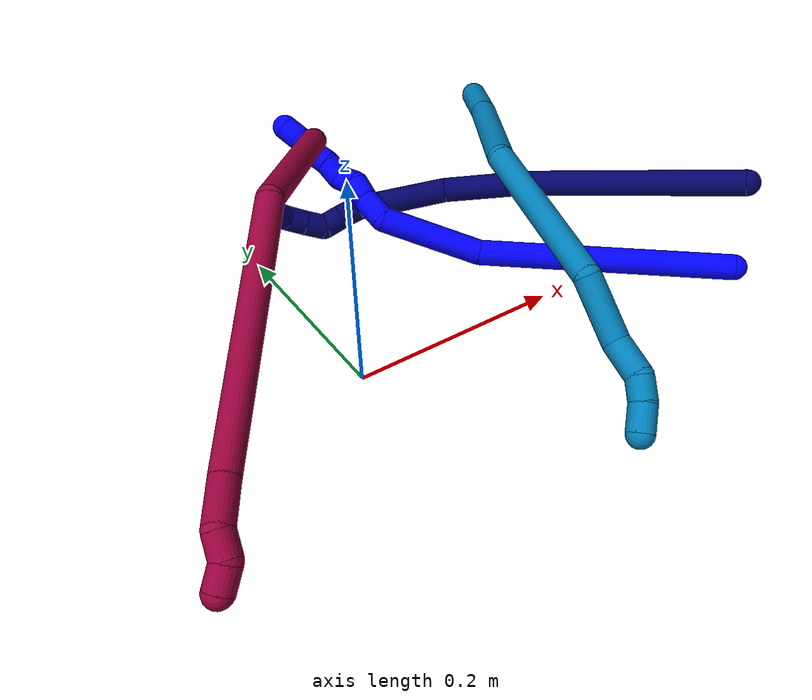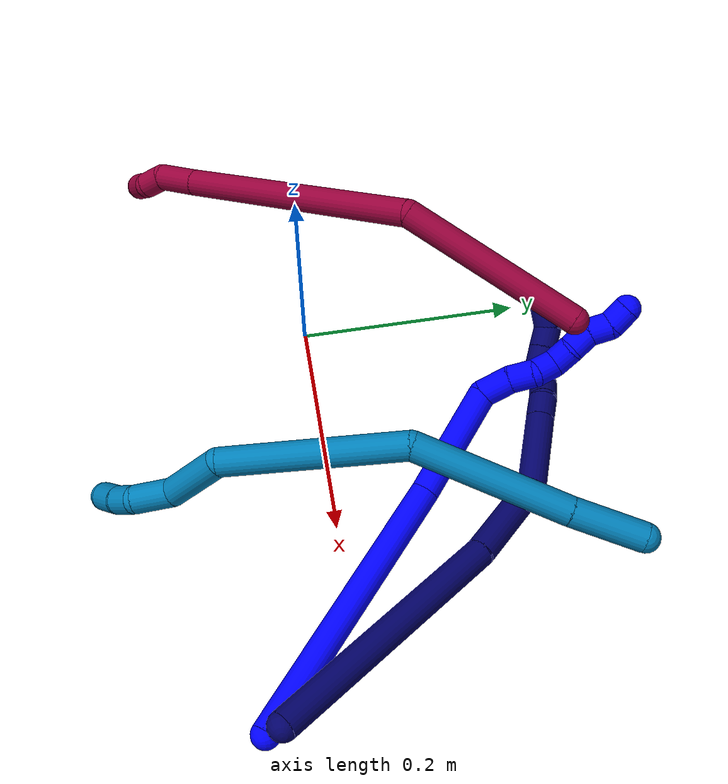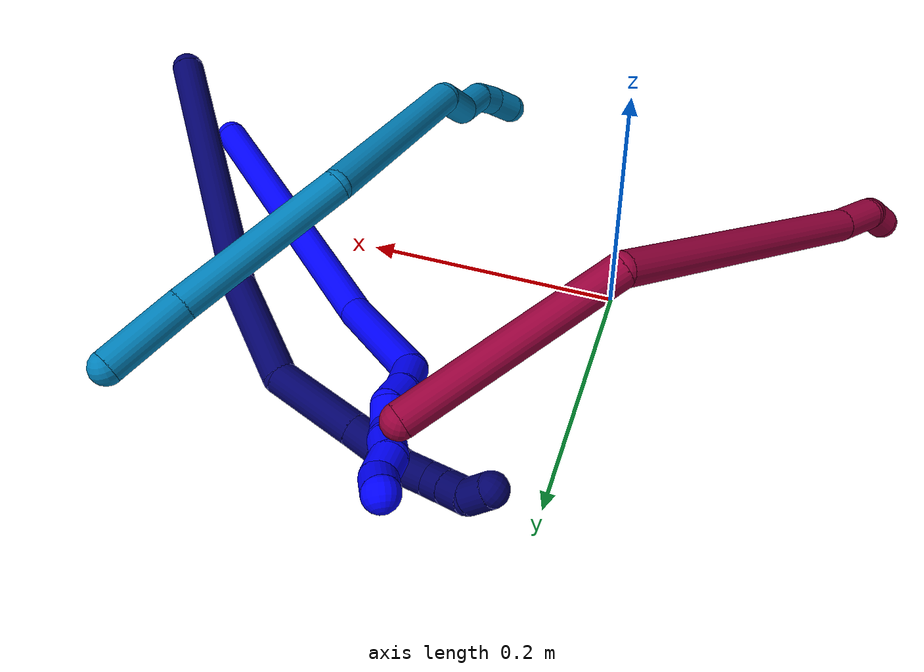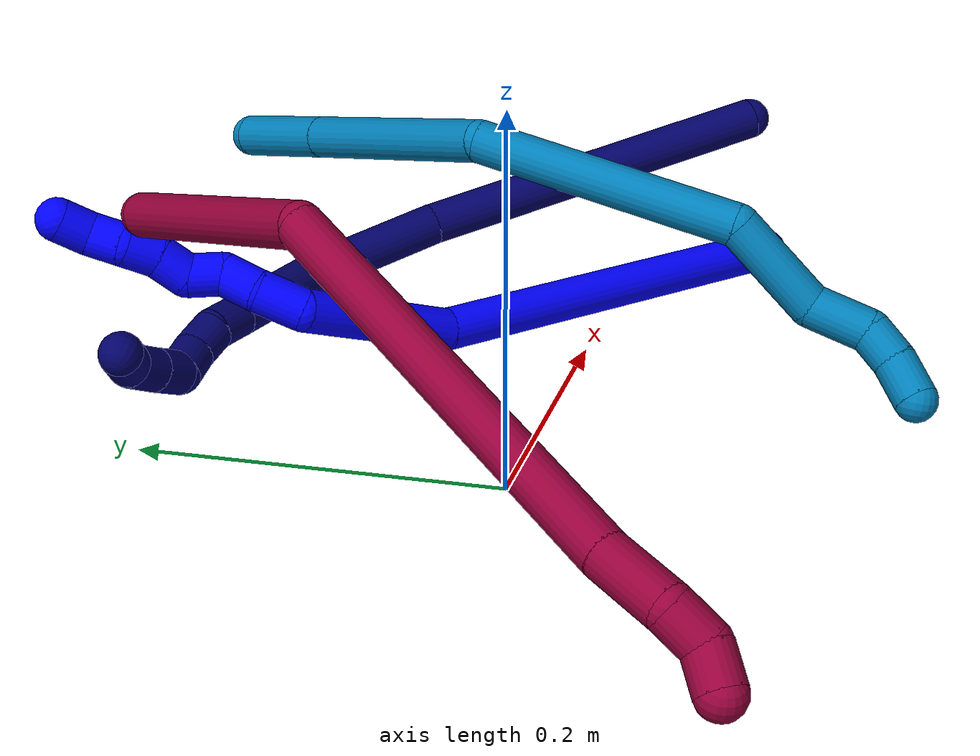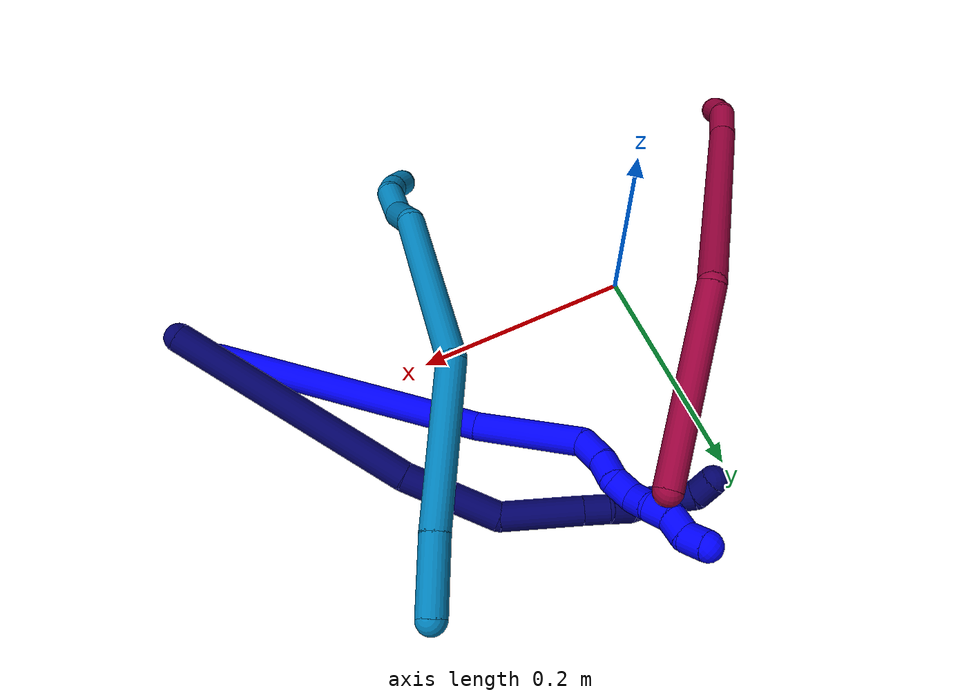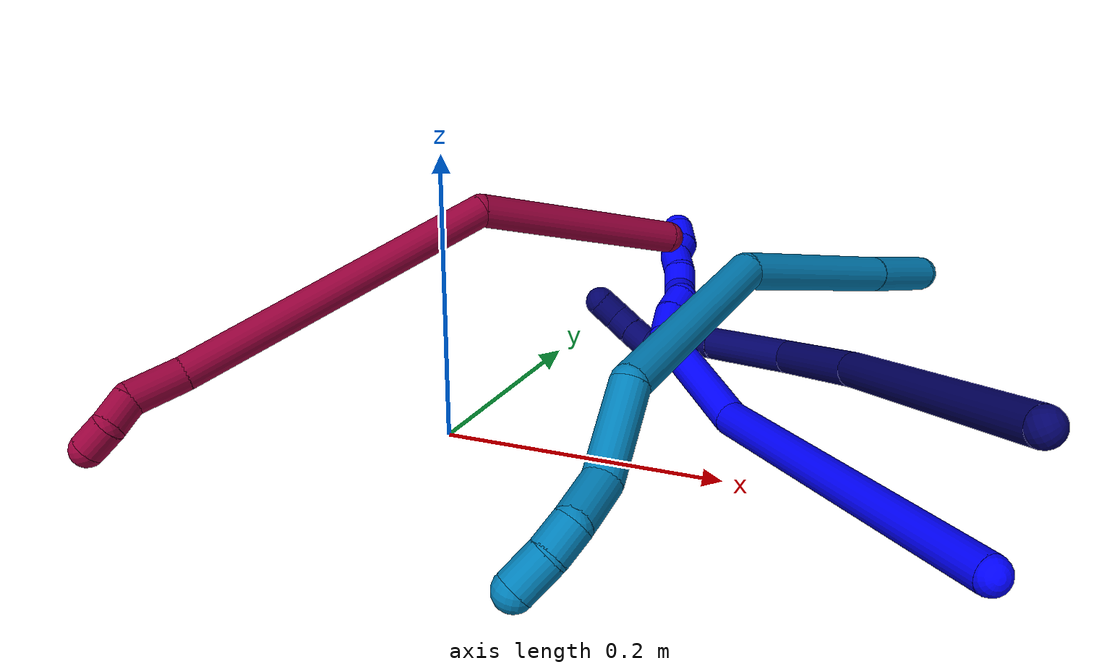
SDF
<sdf version="1.7">
 <world name="default">
  <model name="1">
   <static>0</static>
   <link name="1">
    <collision name="collision-cylinder-e_1_1_4">
     <pose>-0.033727 0.050159 0.108674 -0.432424 -0.274665 0.060692</pose>
     <geometry><cylinder><radius>0.0125</radius><length>0.248705</length></cylinder></geometry>
     <surface>
      <friction><ode><mu>1.16</mu><mu2>1.16</mu2><slip1>0</slip1><slip2>0</slip2></ode></friction>
      <contact><ode><kp>1e+06</kp><kd>1</kd><max_vel>0</max_vel><min_depth>0.001</min_depth></ode></contact>
     </surface>
    </collision>
    <visual name="visual-cylinder-e_1_1_4">
     <pose>-0.033727 0.050159 0.108674 -0.432424 -0.274665 0.060692</pose>
     <geometry><cylinder><radius>0.0125</radius><length>0.248705</length></cylinder></geometry>
     <material><ambient>0 0 1 1</ambient></material>
    </visual>
    <collision name="collision-cylinder-e_2_4_5">
     <pose>-0.095695 0.120194 0.253858 -0.498509 -0.596733 0.156252</pose>
     <geometry><cylinder><radius>0.0125</radius><length>0.100511</length></cylinder></geometry>
     <surface>
      <friction><ode><mu>1.16</mu><mu2>1.16</mu2><slip1>0</slip1><slip2>0</slip2></ode></friction>
      <contact><ode><kp>1e+06</kp><kd>1</kd><max_vel>0</max_vel><min_depth>0.001</min_depth></ode></contact>
     </surface>
    </collision>
    <visual name="visual-cylinder-e_2_4_5">
     <pose>-0.095695 0.120194 0.253858 -0.498509 -0.596733 0.156252</pose>
     <geometry><cylinder><radius>0.0125</radius><length>0.100511</length></cylinder></geometry>
     <material><ambient>0 0 1 1</ambient></material>
    </visual>
    <collision name="collision-cylinder-e_3_5_6">
     <pose>-0.133492 0.137189 0.300109 0.287463 -0.754891 -0.114631</pose>
     <geometry><cylinder><radius>0.0125</radius><length>0.027891</length></cylinder></geometry>
     <surface>
      <friction><ode><mu>1.16</mu><mu2>1.16</mu2><slip1>0</slip1><slip2>0</slip2></ode></friction>
      <contact><ode><kp>1e+06</kp><kd>1</kd><max_vel>0</max_vel><min_depth>0.001</min_depth></ode></contact>
     </surface>
    </collision>
    <visual name="visual-cylinder-e_3_5_6">
     <pose>-0.133492 0.137189 0.300109 0.287463 -0.754891 -0.114631</pose>
     <geometry><cylinder><radius>0.0125</radius><length>0.027891</length></cylinder></geometry>
     <material><ambient>0 0 1 1</ambient></material>
    </visual>
    <collision name="collision-cylinder-e_4_6_7">
     <pose>-0.15005 0.129547 0.316867 0.59625 -0.690233 -0.220047</pose>
     <geometry><cylinder><radius>0.0125</radius><length>0.021996</length></cylinder></geometry>
     <surface>
      <friction><ode><mu>1.16</mu><mu2>1.16</mu2><slip1>0</slip1><slip2>0</slip2></ode></friction>
      <contact><ode><kp>1e+06</kp><kd>1</kd><max_vel>0</max_vel><min_depth>0.001</min_depth></ode></contact>
     </surface>
    </collision>
    <visual name="visual-cylinder-e_4_6_7">
     <pose>-0.15005 0.129547 0.316867 0.59625 -0.690233 -0.220047</pose>
     <geometry><cylinder><radius>0.0125</radius><length>0.021996</length></cylinder></geometry>
     <material><ambient>0 0 1 1</ambient></material>
    </visual>
    <collision name="collision-cylinder-e_5_7_8">
     <pose>-0.160446 0.124032 0.333555 0.077716 -0.336514 -0.013207</pose>
     <geometry><cylinder><radius>0.0125</radius><length>0.020552</length></cylinder></geometry>
     <surface>
      <friction><ode><mu>1.16</mu><mu2>1.16</mu2><slip1>0</slip1><slip2>0</slip2></ode></friction>
      <contact><ode><kp>1e+06</kp><kd>1</kd><max_vel>0</max_vel><min_depth>0.001</min_depth></ode></contact>
     </surface>
    </collision>
    <visual name="visual-cylinder-e_5_7_8">
     <pose>-0.160446 0.124032 0.333555 0.077716 -0.336514 -0.013207</pose>
     <geometry><cylinder><radius>0.0125</radius><length>0.020552</length></cylinder></geometry>
     <material><ambient>0 0 1 1</ambient></material>
    </visual>
    <collision name="collision-cylinder-e_6_8_9">
     <pose>-0.172398 0.12299 0.34865 0.053269 -1.0053 -0.029289</pose>
     <geometry><cylinder><radius>0.0125</radius><length>0.020276</length></cylinder></geometry>
     <surface>
      <friction><ode><mu>1.16</mu><mu2>1.16</mu2><slip1>0</slip1><slip2>0</slip2></ode></friction>
      <contact><ode><kp>1e+06</kp><kd>1</kd><max_vel>0</max_vel><min_depth>0.001</min_depth></ode></contact>
     </surface>
    </collision>
    <visual name="visual-cylinder-e_6_8_9">
     <pose>-0.172398 0.12299 0.34865 0.053269 -1.0053 -0.029289</pose>
     <geometry><cylinder><radius>0.0125</radius><length>0.020276</length></cylinder></geometry>
     <material><ambient>0 0 1 1</ambient></material>
    </visual>
    <collision name="collision-cylinder-e_7_9_10">
     <pose>-0.187777 0.123659 0.361351 -0.130977 -0.748608 0.051513</pose>
     <geometry><cylinder><radius>0.0125</radius><length>0.020038</length></cylinder></geometry>
     <surface>
      <friction><ode><mu>1.16</mu><mu2>1.16</mu2><slip1>0</slip1><slip2>0</slip2></ode></friction>
      <contact><ode><kp>1e+06</kp><kd>1</kd><max_vel>0</max_vel><min_depth>0.001</min_depth></ode></contact>
     </surface>
    </collision>
    <visual name="visual-cylinder-e_7_9_10">
     <pose>-0.187777 0.123659 0.361351 -0.130977 -0.748608 0.051513</pose>
     <geometry><cylinder><radius>0.0125</radius><length>0.020038</length></cylinder></geometry>
     <material><ambient>0 0 1 1</ambient></material>
    </visual>
    <collision name="collision-cylinder-e_8_10_11">
     <pose>-0.200215 0.121117 0.376127 0.436827 -0.596457 -0.136245</pose>
     <geometry><cylinder><radius>0.0125</radius><length>0.020005</length></cylinder></geometry>
     <surface>
      <friction><ode><mu>1.16</mu><mu2>1.16</mu2><slip1>0</slip1><slip2>0</slip2></ode></friction>
      <contact><ode><kp>1e+06</kp><kd>1</kd><max_vel>0</max_vel><min_depth>0.001</min_depth></ode></contact>
     </surface>
    </collision>
    <visual name="visual-cylinder-e_8_10_11">
     <pose>-0.200215 0.121117 0.376127 0.436827 -0.596457 -0.136245</pose>
     <geometry><cylinder><radius>0.0125</radius><length>0.020005</length></cylinder></geometry>
     <material><ambient>0 0 1 1</ambient></material>
    </visual>
    <collision name="collision-cylinder-e_9_11_2">
     <pose>-0.213338 0.118682 0.390168 -0.161581 -0.847293 0.072992</pose>
     <geometry><cylinder><radius>0.0125</radius><length>0.020027</length></cylinder></geometry>
     <surface>
      <friction><ode><mu>1.16</mu><mu2>1.16</mu2><slip1>0</slip1><slip2>0</slip2></ode></friction>
      <contact><ode><kp>1e+06</kp><kd>1</kd><max_vel>0</max_vel><min_depth>0.001</min_depth></ode></contact>
     </surface>
    </collision>
    <visual name="visual-cylinder-e_9_11_2">
     <pose>-0.213338 0.118682 0.390168 -0.161581 -0.847293 0.072992</pose>
     <geometry><cylinder><radius>0.0125</radius><length>0.020027</length></cylinder></geometry>
     <material><ambient>0 0 1 1</ambient></material>
    </visual>
    <collision name="collision-sphere-2">
     <pose>-0.220843 0.119749 0.396711 0 -0 0</pose>
     <geometry><sphere><radius>0.0125</radius></sphere></geometry>
     <surface>
      <friction><ode><mu>1.16</mu><mu2>1.16</mu2><slip1>0</slip1><slip2>0</slip2></ode></friction>
      <contact><ode><kp>1e+06</kp><kd>1</kd><max_vel>0</max_vel><min_depth>0.001</min_depth></ode></contact>
     </surface>
    </collision>
    <visual name="visual-sphere-2">
     <pose>-0.220843 0.119749 0.396711 0 -0 0</pose>
     <geometry><sphere><radius>0.0125</radius></sphere></geometry>
     <material><ambient>0 0 1 1</ambient></material>
    </visual>
    <collision name="collision-sphere-11">
     <pose>-0.205833 0.117616 0.383625 0 -0 0</pose>
     <geometry><sphere><radius>0.0125</radius></sphere></geometry>
     <surface>
      <friction><ode><mu>1.16</mu><mu2>1.16</mu2><slip1>0</slip1><slip2>0</slip2></ode></friction>
      <contact><ode><kp>1e+06</kp><kd>1</kd><max_vel>0</max_vel><min_depth>0.001</min_depth></ode></contact>
     </surface>
    </collision>
    <visual name="visual-sphere-11">
     <pose>-0.205833 0.117616 0.383625 0 -0 0</pose>
     <geometry><sphere><radius>0.0125</radius></sphere></geometry>
     <material><ambient>0 0 1 1</ambient></material>
    </visual>
    <collision name="collision-sphere-10">
     <pose>-0.194596 0.124618 0.368629 0 -0 0</pose>
     <geometry><sphere><radius>0.0125</radius></sphere></geometry>
     <surface>
      <friction><ode><mu>1.16</mu><mu2>1.16</mu2><slip1>0</slip1><slip2>0</slip2></ode></friction>
      <contact><ode><kp>1e+06</kp><kd>1</kd><max_vel>0</max_vel><min_depth>0.001</min_depth></ode></contact>
     </surface>
    </collision>
    <visual name="visual-sphere-10">
     <pose>-0.194596 0.124618 0.368629 0 -0 0</pose>
     <geometry><sphere><radius>0.0125</radius></sphere></geometry>
     <material><ambient>0 0 1 1</ambient></material>
    </visual>
    <collision name="collision-sphere-9">
     <pose>-0.180958 0.122701 0.354074 0 -0 0</pose>
     <geometry><sphere><radius>0.0125</radius></sphere></geometry>
     <surface>
      <friction><ode><mu>1.16</mu><mu2>1.16</mu2><slip1>0</slip1><slip2>0</slip2></ode></friction>
      <contact><ode><kp>1e+06</kp><kd>1</kd><max_vel>0</max_vel><min_depth>0.001</min_depth></ode></contact>
     </surface>
    </collision>
    <visual name="visual-sphere-9">
     <pose>-0.180958 0.122701 0.354074 0 -0 0</pose>
     <geometry><sphere><radius>0.0125</radius></sphere></geometry>
     <material><ambient>0 0 1 1</ambient></material>
    </visual>
    <collision name="collision-sphere-4">
     <pose>-0.067455 0.100319 0.217348 0 -0 0</pose>
     <geometry><sphere><radius>0.0125</radius></sphere></geometry>
     <surface>
      <friction><ode><mu>1.16</mu><mu2>1.16</mu2><slip1>0</slip1><slip2>0</slip2></ode></friction>
      <contact><ode><kp>1e+06</kp><kd>1</kd><max_vel>0</max_vel><min_depth>0.001</min_depth></ode></contact>
     </surface>
    </collision>
    <visual name="visual-sphere-4">
     <pose>-0.067455 0.100319 0.217348 0 -0 0</pose>
     <geometry><sphere><radius>0.0125</radius></sphere></geometry>
     <material><ambient>0 0 1 1</ambient></material>
    </visual>
    <collision name="collision-sphere-1">
     <geometry><sphere><radius>0.0125</radius></sphere></geometry>
     <surface>
      <friction><ode><mu>1.16</mu><mu2>1.16</mu2><slip1>0</slip1><slip2>0</slip2></ode></friction>
      <contact><ode><kp>1e+06</kp><kd>1</kd><max_vel>0</max_vel><min_depth>0.001</min_depth></ode></contact>
     </surface>
    </collision>
    <visual name="visual-sphere-1">
     <geometry><sphere><radius>0.0125</radius></sphere></geometry>
     <material><ambient>0 0 1 1</ambient></material>
    </visual>
    <collision name="collision-sphere-8">
     <pose>-0.163839 0.123279 0.343225 0 -0 0</pose>
     <geometry><sphere><radius>0.0125</radius></sphere></geometry>
     <surface>
      <friction><ode><mu>1.16</mu><mu2>1.16</mu2><slip1>0</slip1><slip2>0</slip2></ode></friction>
      <contact><ode><kp>1e+06</kp><kd>1</kd><max_vel>0</max_vel><min_depth>0.001</min_depth></ode></contact>
     </surface>
    </collision>
    <visual name="visual-sphere-8">
     <pose>-0.163839 0.123279 0.343225 0 -0 0</pose>
     <geometry><sphere><radius>0.0125</radius></sphere></geometry>
     <material><ambient>0 0 1 1</ambient></material>
    </visual>
    <collision name="collision-sphere-5">
     <pose>-0.123936 0.140069 0.290369 0 -0 0</pose>
     <geometry><sphere><radius>0.0125</radius></sphere></geometry>
     <surface>
      <friction><ode><mu>1.16</mu><mu2>1.16</mu2><slip1>0</slip1><slip2>0</slip2></ode></friction>
      <contact><ode><kp>1e+06</kp><kd>1</kd><max_vel>0</max_vel><min_depth>0.001</min_depth></ode></contact>
     </surface>
    </collision>
    <visual name="visual-sphere-5">
     <pose>-0.123936 0.140069 0.290369 0 -0 0</pose>
     <geometry><sphere><radius>0.0125</radius></sphere></geometry>
     <material><ambient>0 0 1 1</ambient></material>
    </visual>
    <collision name="collision-sphere-6">
     <pose>-0.143047 0.13431 0.30985 0 -0 0</pose>
     <geometry><sphere><radius>0.0125</radius></sphere></geometry>
     <surface>
      <friction><ode><mu>1.16</mu><mu2>1.16</mu2><slip1>0</slip1><slip2>0</slip2></ode></friction>
      <contact><ode><kp>1e+06</kp><kd>1</kd><max_vel>0</max_vel><min_depth>0.001</min_depth></ode></contact>
     </surface>
    </collision>
    <visual name="visual-sphere-6">
     <pose>-0.143047 0.13431 0.30985 0 -0 0</pose>
     <geometry><sphere><radius>0.0125</radius></sphere></geometry>
     <material><ambient>0 0 1 1</ambient></material>
    </visual>
    <collision name="collision-sphere-7">
     <pose>-0.157053 0.124785 0.323884 0 -0 0</pose>
     <geometry><sphere><radius>0.0125</radius></sphere></geometry>
     <surface>
      <friction><ode><mu>1.16</mu><mu2>1.16</mu2><slip1>0</slip1><slip2>0</slip2></ode></friction>
      <contact><ode><kp>1e+06</kp><kd>1</kd><max_vel>0</max_vel><min_depth>0.001</min_depth></ode></contact>
     </surface>
    </collision>
    <visual name="visual-sphere-7">
     <pose>-0.157053 0.124785 0.323884 0 -0 0</pose>
     <geometry><sphere><radius>0.0125</radius></sphere></geometry>
     <material><ambient>0 0 1 1</ambient></material>
    </visual>
    <inertial>
     <pose>-0.087728 0.087104 0.208774 0 -0 0</pose>
     <mass>0.5</mass>
     <inertia>
      <ixx>0.001391</ixx>
      <ixy>0</ixy>
      <ixz>0</ixz>
      <iyy>0.001367</iyy>
      <iyz>0</iyz>
      <izz>-0.000115</izz>
     </inertia>
    </inertial>
   </link>
   <pose>0.370835 -0.082846 0.012449 2.90025 1.21988 -1.36146</pose>
  </model>
  <model name="7">
   <static>0</static>
   <link name="7">
    <collision name="collision-cylinder-e_1_1_4">
     <pose>-0.012759 0.081484 -0.074168 -2.30923 -0.11528 0.259635</pose>
     <geometry><cylinder><radius>0.0125</radius><length>0.221841</length></cylinder></geometry>
     <surface>
      <friction><ode><mu>1.16</mu><mu2>1.16</mu2><slip1>0</slip1><slip2>0</slip2></ode></friction>
      <contact><ode><kp>1e+06</kp><kd>1</kd><max_vel>0</max_vel><min_depth>0.001</min_depth></ode></contact>
     </surface>
    </collision>
    <visual name="visual-cylinder-e_1_1_4">
     <pose>-0.012759 0.081484 -0.074168 -2.30923 -0.11528 0.259635</pose>
     <geometry><cylinder><radius>0.0125</radius><length>0.221841</length></cylinder></geometry>
     <material><ambient>0.003922 0 0.403922 1</ambient></material>
    </visual>
    <collision name="collision-cylinder-e_2_4_5">
     <pose>-0.033213 0.189569 -0.180603 -2.45214 -0.181992 0.497721</pose>
     <geometry><cylinder><radius>0.0125</radius><length>0.085039</length></cylinder></geometry>
     <surface>
      <friction><ode><mu>1.16</mu><mu2>1.16</mu2><slip1>0</slip1><slip2>0</slip2></ode></friction>
      <contact><ode><kp>1e+06</kp><kd>1</kd><max_vel>0</max_vel><min_depth>0.001</min_depth></ode></contact>
     </surface>
    </collision>
    <visual name="visual-cylinder-e_2_4_5">
     <pose>-0.033213 0.189569 -0.180603 -2.45214 -0.181992 0.497721</pose>
     <geometry><cylinder><radius>0.0125</radius><length>0.085039</length></cylinder></geometry>
     <material><ambient>0.003922 0 0.403922 1</ambient></material>
    </visual>
    <collision name="collision-cylinder-e_3_5_6">
     <pose>-0.056443 0.225329 -0.242806 -2.84467 -0.460606 2.00595</pose>
     <geometry><cylinder><radius>0.0125</radius><length>0.069899</length></cylinder></geometry>
     <surface>
      <friction><ode><mu>1.16</mu><mu2>1.16</mu2><slip1>0</slip1><slip2>0</slip2></ode></friction>
      <contact><ode><kp>1e+06</kp><kd>1</kd><max_vel>0</max_vel><min_depth>0.001</min_depth></ode></contact>
     </surface>
    </collision>
    <visual name="visual-cylinder-e_3_5_6">
     <pose>-0.056443 0.225329 -0.242806 -2.84467 -0.460606 2.00595</pose>
     <geometry><cylinder><radius>0.0125</radius><length>0.069899</length></cylinder></geometry>
     <material><ambient>0.003922 0 0.403922 1</ambient></material>
    </visual>
    <collision name="collision-cylinder-e_4_6_7">
     <pose>-0.076863 0.237552 -0.282164 -2.82729 -0.458172 1.94786</pose>
     <geometry><cylinder><radius>0.0125</radius><length>0.02209</length></cylinder></geometry>
     <surface>
      <friction><ode><mu>1.16</mu><mu2>1.16</mu2><slip1>0</slip1><slip2>0</slip2></ode></friction>
      <contact><ode><kp>1e+06</kp><kd>1</kd><max_vel>0</max_vel><min_depth>0.001</min_depth></ode></contact>
     </surface>
    </collision>
    <visual name="visual-cylinder-e_4_6_7">
     <pose>-0.076863 0.237552 -0.282164 -2.82729 -0.458172 1.94786</pose>
     <geometry><cylinder><radius>0.0125</radius><length>0.02209</length></cylinder></geometry>
     <material><ambient>0.003922 0 0.403922 1</ambient></material>
    </visual>
    <collision name="collision-cylinder-e_5_7_8">
     <pose>-0.083689 0.24233 -0.301611 -2.97208 -0.188513 1.67743</pose>
     <geometry><cylinder><radius>0.0125</radius><length>0.020711</length></cylinder></geometry>
     <surface>
      <friction><ode><mu>1.16</mu><mu2>1.16</mu2><slip1>0</slip1><slip2>0</slip2></ode></friction>
      <contact><ode><kp>1e+06</kp><kd>1</kd><max_vel>0</max_vel><min_depth>0.001</min_depth></ode></contact>
     </surface>
    </collision>
    <visual name="visual-cylinder-e_5_7_8">
     <pose>-0.083689 0.24233 -0.301611 -2.97208 -0.188513 1.67743</pose>
     <geometry><cylinder><radius>0.0125</radius><length>0.020711</length></cylinder></geometry>
     <material><ambient>0.003922 0 0.403922 1</ambient></material>
    </visual>
    <collision name="collision-cylinder-e_6_8_9">
     <pose>-0.088911 0.243537 -0.321234 3.08859 -0.328984 -2.82487</pose>
     <geometry><cylinder><radius>0.0125</radius><length>0.020308</length></cylinder></geometry>
     <surface>
      <friction><ode><mu>1.16</mu><mu2>1.16</mu2><slip1>0</slip1><slip2>0</slip2></ode></friction>
      <contact><ode><kp>1e+06</kp><kd>1</kd><max_vel>0</max_vel><min_depth>0.001</min_depth></ode></contact>
     </surface>
    </collision>
    <visual name="visual-cylinder-e_6_8_9">
     <pose>-0.088911 0.243537 -0.321234 3.08859 -0.328984 -2.82487</pose>
     <geometry><cylinder><radius>0.0125</radius><length>0.020308</length></cylinder></geometry>
     <material><ambient>0.003922 0 0.403922 1</ambient></material>
    </visual>
    <collision name="collision-cylinder-e_7_9_10">
     <pose>-0.099872 0.24646 -0.336249 -2.57695 -0.875028 2.0314</pose>
     <geometry><cylinder><radius>0.0125</radius><length>0.020014</length></cylinder></geometry>
     <surface>
      <friction><ode><mu>1.16</mu><mu2>1.16</mu2><slip1>0</slip1><slip2>0</slip2></ode></friction>
      <contact><ode><kp>1e+06</kp><kd>1</kd><max_vel>0</max_vel><min_depth>0.001</min_depth></ode></contact>
     </surface>
    </collision>
    <visual name="visual-cylinder-e_7_9_10">
     <pose>-0.099872 0.24646 -0.336249 -2.57695 -0.875028 2.0314</pose>
     <geometry><cylinder><radius>0.0125</radius><length>0.020014</length></cylinder></geometry>
     <material><ambient>0.003922 0 0.403922 1</ambient></material>
    </visual>
    <collision name="collision-cylinder-e_8_10_11">
     <pose>-0.115367 0.25354 -0.346748 -2.51899 -0.895836 1.96145</pose>
     <geometry><cylinder><radius>0.0125</radius><length>0.020018</length></cylinder></geometry>
     <surface>
      <friction><ode><mu>1.16</mu><mu2>1.16</mu2><slip1>0</slip1><slip2>0</slip2></ode></friction>
      <contact><ode><kp>1e+06</kp><kd>1</kd><max_vel>0</max_vel><min_depth>0.001</min_depth></ode></contact>
     </surface>
    </collision>
    <visual name="visual-cylinder-e_8_10_11">
     <pose>-0.115367 0.25354 -0.346748 -2.51899 -0.895836 1.96145</pose>
     <geometry><cylinder><radius>0.0125</radius><length>0.020018</length></cylinder></geometry>
     <material><ambient>0.003922 0 0.403922 1</ambient></material>
    </visual>
    <collision name="collision-cylinder-e_9_11_2">
     <pose>-0.132776 0.256224 -0.354623 2.80979 -1.27201 -2.69559</pose>
     <geometry><cylinder><radius>0.0125</radius><length>0.020079</length></cylinder></geometry>
     <surface>
      <friction><ode><mu>1.16</mu><mu2>1.16</mu2><slip1>0</slip1><slip2>0</slip2></ode></friction>
      <contact><ode><kp>1e+06</kp><kd>1</kd><max_vel>0</max_vel><min_depth>0.001</min_depth></ode></contact>
     </surface>
    </collision>
    <visual name="visual-cylinder-e_9_11_2">
     <pose>-0.132776 0.256224 -0.354623 2.80979 -1.27201 -2.69559</pose>
     <geometry><cylinder><radius>0.0125</radius><length>0.020079</length></cylinder></geometry>
     <material><ambient>0.003922 0 0.403922 1</ambient></material>
    </visual>
    <collision name="collision-sphere-2">
     <pose>-0.142371 0.255262 -0.357417 0 -0 0</pose>
     <geometry><sphere><radius>0.0125</radius></sphere></geometry>
     <surface>
      <friction><ode><mu>1.16</mu><mu2>1.16</mu2><slip1>0</slip1><slip2>0</slip2></ode></friction>
      <contact><ode><kp>1e+06</kp><kd>1</kd><max_vel>0</max_vel><min_depth>0.001</min_depth></ode></contact>
     </surface>
    </collision>
    <visual name="visual-sphere-2">
     <pose>-0.142371 0.255262 -0.357417 0 -0 0</pose>
     <geometry><sphere><radius>0.0125</radius></sphere></geometry>
     <material><ambient>0.003922 0 0.403922 1</ambient></material>
    </visual>
    <collision name="collision-sphere-11">
     <pose>-0.123182 0.257187 -0.351829 0 -0 0</pose>
     <geometry><sphere><radius>0.0125</radius></sphere></geometry>
     <surface>
      <friction><ode><mu>1.16</mu><mu2>1.16</mu2><slip1>0</slip1><slip2>0</slip2></ode></friction>
      <contact><ode><kp>1e+06</kp><kd>1</kd><max_vel>0</max_vel><min_depth>0.001</min_depth></ode></contact>
     </surface>
    </collision>
    <visual name="visual-sphere-11">
     <pose>-0.123182 0.257187 -0.351829 0 -0 0</pose>
     <geometry><sphere><radius>0.0125</radius></sphere></geometry>
     <material><ambient>0.003922 0 0.403922 1</ambient></material>
    </visual>
    <collision name="collision-sphere-10">
     <pose>-0.107553 0.249893 -0.341667 0 -0 0</pose>
     <geometry><sphere><radius>0.0125</radius></sphere></geometry>
     <surface>
      <friction><ode><mu>1.16</mu><mu2>1.16</mu2><slip1>0</slip1><slip2>0</slip2></ode></friction>
      <contact><ode><kp>1e+06</kp><kd>1</kd><max_vel>0</max_vel><min_depth>0.001</min_depth></ode></contact>
     </surface>
    </collision>
    <visual name="visual-sphere-10">
     <pose>-0.107553 0.249893 -0.341667 0 -0 0</pose>
     <geometry><sphere><radius>0.0125</radius></sphere></geometry>
     <material><ambient>0.003922 0 0.403922 1</ambient></material>
    </visual>
    <collision name="collision-sphere-9">
     <pose>-0.092191 0.243028 -0.33083 0 -0 0</pose>
     <geometry><sphere><radius>0.0125</radius></sphere></geometry>
     <surface>
      <friction><ode><mu>1.16</mu><mu2>1.16</mu2><slip1>0</slip1><slip2>0</slip2></ode></friction>
      <contact><ode><kp>1e+06</kp><kd>1</kd><max_vel>0</max_vel><min_depth>0.001</min_depth></ode></contact>
     </surface>
    </collision>
    <visual name="visual-sphere-9">
     <pose>-0.092191 0.243028 -0.33083 0 -0 0</pose>
     <geometry><sphere><radius>0.0125</radius></sphere></geometry>
     <material><ambient>0.003922 0 0.403922 1</ambient></material>
    </visual>
    <collision name="collision-sphere-4">
     <pose>-0.025517 0.162968 -0.148337 0 -0 0</pose>
     <geometry><sphere><radius>0.0125</radius></sphere></geometry>
     <surface>
      <friction><ode><mu>1.16</mu><mu2>1.16</mu2><slip1>0</slip1><slip2>0</slip2></ode></friction>
      <contact><ode><kp>1e+06</kp><kd>1</kd><max_vel>0</max_vel><min_depth>0.001</min_depth></ode></contact>
     </surface>
    </collision>
    <visual name="visual-sphere-4">
     <pose>-0.025517 0.162968 -0.148337 0 -0 0</pose>
     <geometry><sphere><radius>0.0125</radius></sphere></geometry>
     <material><ambient>0.003922 0 0.403922 1</ambient></material>
    </visual>
    <collision name="collision-sphere-1">
     <geometry><sphere><radius>0.0125</radius></sphere></geometry>
     <surface>
      <friction><ode><mu>1.16</mu><mu2>1.16</mu2><slip1>0</slip1><slip2>0</slip2></ode></friction>
      <contact><ode><kp>1e+06</kp><kd>1</kd><max_vel>0</max_vel><min_depth>0.001</min_depth></ode></contact>
     </surface>
    </collision>
    <visual name="visual-sphere-1">
     <geometry><sphere><radius>0.0125</radius></sphere></geometry>
     <material><ambient>0.003922 0 0.403922 1</ambient></material>
    </visual>
    <collision name="collision-sphere-8">
     <pose>-0.08563 0.244046 -0.311638 0 -0 0</pose>
     <geometry><sphere><radius>0.0125</radius></sphere></geometry>
     <surface>
      <friction><ode><mu>1.16</mu><mu2>1.16</mu2><slip1>0</slip1><slip2>0</slip2></ode></friction>
      <contact><ode><kp>1e+06</kp><kd>1</kd><max_vel>0</max_vel><min_depth>0.001</min_depth></ode></contact>
     </surface>
    </collision>
    <visual name="visual-sphere-8">
     <pose>-0.08563 0.244046 -0.311638 0 -0 0</pose>
     <geometry><sphere><radius>0.0125</radius></sphere></geometry>
     <material><ambient>0.003922 0 0.403922 1</ambient></material>
    </visual>
    <collision name="collision-sphere-5">
     <pose>-0.040908 0.216169 -0.212869 0 -0 0</pose>
     <geometry><sphere><radius>0.0125</radius></sphere></geometry>
     <surface>
      <friction><ode><mu>1.16</mu><mu2>1.16</mu2><slip1>0</slip1><slip2>0</slip2></ode></friction>
      <contact><ode><kp>1e+06</kp><kd>1</kd><max_vel>0</max_vel><min_depth>0.001</min_depth></ode></contact>
     </surface>
    </collision>
    <visual name="visual-sphere-5">
     <pose>-0.040908 0.216169 -0.212869 0 -0 0</pose>
     <geometry><sphere><radius>0.0125</radius></sphere></geometry>
     <material><ambient>0.003922 0 0.403922 1</ambient></material>
    </visual>
    <collision name="collision-sphere-6">
     <pose>-0.071978 0.234489 -0.272744 0 -0 0</pose>
     <geometry><sphere><radius>0.0125</radius></sphere></geometry>
     <surface>
      <friction><ode><mu>1.16</mu><mu2>1.16</mu2><slip1>0</slip1><slip2>0</slip2></ode></friction>
      <contact><ode><kp>1e+06</kp><kd>1</kd><max_vel>0</max_vel><min_depth>0.001</min_depth></ode></contact>
     </surface>
    </collision>
    <visual name="visual-sphere-6">
     <pose>-0.071978 0.234489 -0.272744 0 -0 0</pose>
     <geometry><sphere><radius>0.0125</radius></sphere></geometry>
     <material><ambient>0.003922 0 0.403922 1</ambient></material>
    </visual>
    <collision name="collision-sphere-7">
     <pose>-0.081749 0.240614 -0.291585 0 -0 0</pose>
     <geometry><sphere><radius>0.0125</radius></sphere></geometry>
     <surface>
      <friction><ode><mu>1.16</mu><mu2>1.16</mu2><slip1>0</slip1><slip2>0</slip2></ode></friction>
      <contact><ode><kp>1e+06</kp><kd>1</kd><max_vel>0</max_vel><min_depth>0.001</min_depth></ode></contact>
     </surface>
    </collision>
    <visual name="visual-sphere-7">
     <pose>-0.081749 0.240614 -0.291585 0 -0 0</pose>
     <geometry><sphere><radius>0.0125</radius></sphere></geometry>
     <material><ambient>0.003922 0 0.403922 1</ambient></material>
    </visual>
    <inertial>
     <pose>-0.043622 0.160625 -0.177157 0 -0 0</pose>
     <mass>0.5</mass>
     <inertia>
      <ixx>0.001192</ixx>
      <ixy>0</ixy>
      <ixz>0</ixz>
      <iyy>-0.00028</iyy>
      <iyz>0</iyz>
      <izz>-0.000612</izz>
     </inertia>
    </inertial>
   </link>
   <pose>0.387696 -0.066447 0.09425 0.157207 0.989819 0.061722</pose>
  </model>
  <model name="8">
   <static>0</static>
   <link name="8">
    <collision name="collision-cylinder-e_1_1_4">
     <pose>-0.047881 -0.057607 0.041033 0.95187 -0.595114 -0.313546</pose>
     <geometry><cylinder><radius>0.0125</radius><length>0.170819</length></cylinder></geometry>
     <surface>
      <friction><ode><mu>1.16</mu><mu2>1.16</mu2><slip1>0</slip1><slip2>0</slip2></ode></friction>
      <contact><ode><kp>1e+06</kp><kd>1</kd><max_vel>0</max_vel><min_depth>0.001</min_depth></ode></contact>
     </surface>
    </collision>
    <visual name="visual-cylinder-e_1_1_4">
     <pose>-0.047881 -0.057607 0.041033 0.95187 -0.595114 -0.313546</pose>
     <geometry><cylinder><radius>0.0125</radius><length>0.170819</length></cylinder></geometry>
     <material><ambient>0.584314 0 0.227451 1</ambient></material>
    </visual>
    <collision name="collision-cylinder-e_2_4_5">
     <pose>-0.173569 -0.209507 0.069354 1.70479 -0.685477 -0.775025</pose>
     <geometry><cylinder><radius>0.0125</radius><length>0.245819</length></cylinder></geometry>
     <surface>
      <friction><ode><mu>1.16</mu><mu2>1.16</mu2><slip1>0</slip1><slip2>0</slip2></ode></friction>
      <contact><ode><kp>1e+06</kp><kd>1</kd><max_vel>0</max_vel><min_depth>0.001</min_depth></ode></contact>
     </surface>
    </collision>
    <visual name="visual-cylinder-e_2_4_5">
     <pose>-0.173569 -0.209507 0.069354 1.70479 -0.685477 -0.775025</pose>
     <geometry><cylinder><radius>0.0125</radius><length>0.245819</length></cylinder></geometry>
     <material><ambient>0.584314 0 0.227451 1</ambient></material>
    </visual>
    <collision name="collision-cylinder-e_3_5_6">
     <pose>-0.262892 -0.319799 0.05647 1.58161 -0.62388 -0.630224</pose>
     <geometry><cylinder><radius>0.0125</radius><length>0.039426</length></cylinder></geometry>
     <surface>
      <friction><ode><mu>1.16</mu><mu2>1.16</mu2><slip1>0</slip1><slip2>0</slip2></ode></friction>
      <contact><ode><kp>1e+06</kp><kd>1</kd><max_vel>0</max_vel><min_depth>0.001</min_depth></ode></contact>
     </surface>
    </collision>
    <visual name="visual-cylinder-e_3_5_6">
     <pose>-0.262892 -0.319799 0.05647 1.58161 -0.62388 -0.630224</pose>
     <geometry><cylinder><radius>0.0125</radius><length>0.039426</length></cylinder></geometry>
     <material><ambient>0.584314 0 0.227451 1</ambient></material>
    </visual>
    <collision name="collision-cylinder-e_4_6_7">
     <pose>-0.277773 -0.345345 0.051674 2.02167 -0.307242 -0.484299</pose>
     <geometry><cylinder><radius>0.0125</radius><length>0.022259</length></cylinder></geometry>
     <surface>
      <friction><ode><mu>1.16</mu><mu2>1.16</mu2><slip1>0</slip1><slip2>0</slip2></ode></friction>
      <contact><ode><kp>1e+06</kp><kd>1</kd><max_vel>0</max_vel><min_depth>0.001</min_depth></ode></contact>
     </surface>
    </collision>
    <visual name="visual-cylinder-e_4_6_7">
     <pose>-0.277773 -0.345345 0.051674 2.02167 -0.307242 -0.484299</pose>
     <geometry><cylinder><radius>0.0125</radius><length>0.022259</length></cylinder></geometry>
     <material><ambient>0.584314 0 0.227451 1</ambient></material>
    </visual>
    <collision name="collision-cylinder-e_5_7_2">
     <pose>-0.288927 -0.360176 0.041674 2.36512 -0.801659 -1.60628</pose>
     <geometry><cylinder><radius>0.0125</radius><length>0.021677</length></cylinder></geometry>
     <surface>
      <friction><ode><mu>1.16</mu><mu2>1.16</mu2><slip1>0</slip1><slip2>0</slip2></ode></friction>
      <contact><ode><kp>1e+06</kp><kd>1</kd><max_vel>0</max_vel><min_depth>0.001</min_depth></ode></contact>
     </surface>
    </collision>
    <visual name="visual-cylinder-e_5_7_2">
     <pose>-0.288927 -0.360176 0.041674 2.36512 -0.801659 -1.60628</pose>
     <geometry><cylinder><radius>0.0125</radius><length>0.021677</length></cylinder></geometry>
     <material><ambient>0.584314 0 0.227451 1</ambient></material>
    </visual>
    <collision name="collision-sphere-2">
     <pose>-0.296715 -0.365459 0.036296 0 -0 0</pose>
     <geometry><sphere><radius>0.0125</radius></sphere></geometry>
     <surface>
      <friction><ode><mu>1.16</mu><mu2>1.16</mu2><slip1>0</slip1><slip2>0</slip2></ode></friction>
      <contact><ode><kp>1e+06</kp><kd>1</kd><max_vel>0</max_vel><min_depth>0.001</min_depth></ode></contact>
     </surface>
    </collision>
    <visual name="visual-sphere-2">
     <pose>-0.296715 -0.365459 0.036296 0 -0 0</pose>
     <geometry><sphere><radius>0.0125</radius></sphere></geometry>
     <material><ambient>0.584314 0 0.227451 1</ambient></material>
    </visual>
    <collision name="collision-sphere-7">
     <pose>-0.281139 -0.354893 0.047052 0 -0 0</pose>
     <geometry><sphere><radius>0.0125</radius></sphere></geometry>
     <surface>
      <friction><ode><mu>1.16</mu><mu2>1.16</mu2><slip1>0</slip1><slip2>0</slip2></ode></friction>
      <contact><ode><kp>1e+06</kp><kd>1</kd><max_vel>0</max_vel><min_depth>0.001</min_depth></ode></contact>
     </surface>
    </collision>
    <visual name="visual-sphere-7">
     <pose>-0.281139 -0.354893 0.047052 0 -0 0</pose>
     <geometry><sphere><radius>0.0125</radius></sphere></geometry>
     <material><ambient>0.584314 0 0.227451 1</ambient></material>
    </visual>
    <collision name="collision-sphere-6">
     <pose>-0.274408 -0.335797 0.056297 0 -0 0</pose>
     <geometry><sphere><radius>0.0125</radius></sphere></geometry>
     <surface>
      <friction><ode><mu>1.16</mu><mu2>1.16</mu2><slip1>0</slip1><slip2>0</slip2></ode></friction>
      <contact><ode><kp>1e+06</kp><kd>1</kd><max_vel>0</max_vel><min_depth>0.001</min_depth></ode></contact>
     </surface>
    </collision>
    <visual name="visual-sphere-6">
     <pose>-0.274408 -0.335797 0.056297 0 -0 0</pose>
     <geometry><sphere><radius>0.0125</radius></sphere></geometry>
     <material><ambient>0.584314 0 0.227451 1</ambient></material>
    </visual>
    <collision name="collision-sphere-5">
     <pose>-0.251376 -0.3038 0.056643 0 -0 0</pose>
     <geometry><sphere><radius>0.0125</radius></sphere></geometry>
     <surface>
      <friction><ode><mu>1.16</mu><mu2>1.16</mu2><slip1>0</slip1><slip2>0</slip2></ode></friction>
      <contact><ode><kp>1e+06</kp><kd>1</kd><max_vel>0</max_vel><min_depth>0.001</min_depth></ode></contact>
     </surface>
    </collision>
    <visual name="visual-sphere-5">
     <pose>-0.251376 -0.3038 0.056643 0 -0 0</pose>
     <geometry><sphere><radius>0.0125</radius></sphere></geometry>
     <material><ambient>0.584314 0 0.227451 1</ambient></material>
    </visual>
    <collision name="collision-sphere-1">
     <geometry><sphere><radius>0.0125</radius></sphere></geometry>
     <surface>
      <friction><ode><mu>1.16</mu><mu2>1.16</mu2><slip1>0</slip1><slip2>0</slip2></ode></friction>
      <contact><ode><kp>1e+06</kp><kd>1</kd><max_vel>0</max_vel><min_depth>0.001</min_depth></ode></contact>
     </surface>
    </collision>
    <visual name="visual-sphere-1">
     <geometry><sphere><radius>0.0125</radius></sphere></geometry>
     <material><ambient>0.584314 0 0.227451 1</ambient></material>
    </visual>
    <collision name="collision-sphere-4">
     <pose>-0.095762 -0.115213 0.082065 0 -0 0</pose>
     <geometry><sphere><radius>0.0125</radius></sphere></geometry>
     <surface>
      <friction><ode><mu>1.16</mu><mu2>1.16</mu2><slip1>0</slip1><slip2>0</slip2></ode></friction>
      <contact><ode><kp>1e+06</kp><kd>1</kd><max_vel>0</max_vel><min_depth>0.001</min_depth></ode></contact>
     </surface>
    </collision>
    <visual name="visual-sphere-4">
     <pose>-0.095762 -0.115213 0.082065 0 -0 0</pose>
     <geometry><sphere><radius>0.0125</radius></sphere></geometry>
     <material><ambient>0.584314 0 0.227451 1</ambient></material>
    </visual>
    <inertial>
     <pose>-0.147312 -0.178888 0.056675 0 -0 0</pose>
     <mass>0.5</mass>
     <inertia>
      <ixx>0.000216</ixx>
      <ixy>0</ixy>
      <ixz>0</ixz>
      <iyy>-9.4e-05</iyy>
      <iyz>0</iyz>
      <izz>0.002284</izz>
     </inertia>
    </inertial>
   </link>
   <pose>0.085798 0.22641 0.101732 0.165535 -0.225833 0.002158</pose>
  </model>
  <model name="9">
   <static>0</static>
   <link name="9">
    <collision name="collision-cylinder-e_1_1_4">
     <pose>-0.016395 -0.026152 0.004461 1.40185 -0.553546 -0.470547</pose>
     <geometry><cylinder><radius>0.0125</radius><length>0.062373</length></cylinder></geometry>
     <surface>
      <friction><ode><mu>1.16</mu><mu2>1.16</mu2><slip1>0</slip1><slip2>0</slip2></ode></friction>
      <contact><ode><kp>1e+06</kp><kd>1</kd><max_vel>0</max_vel><min_depth>0.001</min_depth></ode></contact>
     </surface>
    </collision>
    <visual name="visual-cylinder-e_1_1_4">
     <pose>-0.016395 -0.026152 0.004461 1.40185 -0.553546 -0.470547</pose>
     <geometry><cylinder><radius>0.0125</radius><length>0.062373</length></cylinder></geometry>
     <material><ambient>0 0.490196 0.709804 1</ambient></material>
    </visual>
    <collision name="collision-cylinder-e_2_4_5">
     <pose>-0.071731 -0.10712 0.018355 1.40037 -0.610787 -0.519282</pose>
     <geometry><cylinder><radius>0.0125</radius><length>0.135798</length></cylinder></geometry>
     <surface>
      <friction><ode><mu>1.16</mu><mu2>1.16</mu2><slip1>0</slip1><slip2>0</slip2></ode></friction>
      <contact><ode><kp>1e+06</kp><kd>1</kd><max_vel>0</max_vel><min_depth>0.001</min_depth></ode></contact>
     </surface>
    </collision>
    <visual name="visual-cylinder-e_2_4_5">
     <pose>-0.071731 -0.10712 0.018355 1.40037 -0.610787 -0.519282</pose>
     <geometry><cylinder><radius>0.0125</radius><length>0.135798</length></cylinder></geometry>
     <material><ambient>0 0.490196 0.709804 1</ambient></material>
    </visual>
    <collision name="collision-cylinder-e_3_5_6">
     <pose>-0.125082 -0.239618 0.017719 1.6997 -0.181932 -0.206868</pose>
     <geometry><cylinder><radius>0.0125</radius><length>0.159291</length></cylinder></geometry>
     <surface>
      <friction><ode><mu>1.16</mu><mu2>1.16</mu2><slip1>0</slip1><slip2>0</slip2></ode></friction>
      <contact><ode><kp>1e+06</kp><kd>1</kd><max_vel>0</max_vel><min_depth>0.001</min_depth></ode></contact>
     </surface>
    </collision>
    <visual name="visual-cylinder-e_3_5_6">
     <pose>-0.125082 -0.239618 0.017719 1.6997 -0.181932 -0.206868</pose>
     <geometry><cylinder><radius>0.0125</radius><length>0.159291</length></cylinder></geometry>
     <material><ambient>0 0.490196 0.709804 1</ambient></material>
    </visual>
    <collision name="collision-cylinder-e_4_6_7">
     <pose>-0.13602 -0.34061 -0.011105 2.24832 0.115527 0.240334</pose>
     <geometry><cylinder><radius>0.0125</radius><length>0.060242</length></cylinder></geometry>
     <surface>
      <friction><ode><mu>1.16</mu><mu2>1.16</mu2><slip1>0</slip1><slip2>0</slip2></ode></friction>
      <contact><ode><kp>1e+06</kp><kd>1</kd><max_vel>0</max_vel><min_depth>0.001</min_depth></ode></contact>
     </surface>
    </collision>
    <visual name="visual-cylinder-e_4_6_7">
     <pose>-0.13602 -0.34061 -0.011105 2.24832 0.115527 0.240334</pose>
     <geometry><cylinder><radius>0.0125</radius><length>0.060242</length></cylinder></geometry>
     <material><ambient>0 0.490196 0.709804 1</ambient></material>
    </visual>
    <collision name="collision-cylinder-e_5_7_8">
     <pose>-0.134226 -0.381143 -0.033828 1.79721 -0.094694 -0.118937</pose>
     <geometry><cylinder><radius>0.0125</radius><length>0.035503</length></cylinder></geometry>
     <surface>
      <friction><ode><mu>1.16</mu><mu2>1.16</mu2><slip1>0</slip1><slip2>0</slip2></ode></friction>
      <contact><ode><kp>1e+06</kp><kd>1</kd><max_vel>0</max_vel><min_depth>0.001</min_depth></ode></contact>
     </surface>
    </collision>
    <visual name="visual-cylinder-e_5_7_8">
     <pose>-0.134226 -0.381143 -0.033828 1.79721 -0.094694 -0.118937</pose>
     <geometry><cylinder><radius>0.0125</radius><length>0.035503</length></cylinder></geometry>
     <material><ambient>0 0.490196 0.709804 1</ambient></material>
    </visual>
    <collision name="collision-cylinder-e_6_8_9">
     <pose>-0.13879 -0.406388 -0.04441 2.26017 -0.27067 -0.562124</pose>
     <geometry><cylinder><radius>0.0125</radius><length>0.021584</length></cylinder></geometry>
     <surface>
      <friction><ode><mu>1.16</mu><mu2>1.16</mu2><slip1>0</slip1><slip2>0</slip2></ode></friction>
      <contact><ode><kp>1e+06</kp><kd>1</kd><max_vel>0</max_vel><min_depth>0.001</min_depth></ode></contact>
     </surface>
    </collision>
    <visual name="visual-cylinder-e_6_8_9">
     <pose>-0.13879 -0.406388 -0.04441 2.26017 -0.27067 -0.562124</pose>
     <geometry><cylinder><radius>0.0125</radius><length>0.021584</length></cylinder></geometry>
     <material><ambient>0 0.490196 0.709804 1</ambient></material>
    </visual>
    <collision name="collision-cylinder-e_7_9_2">
     <pose>-0.146742 -0.421831 -0.059867 2.44357 -0.413614 -1.04598</pose>
     <geometry><cylinder><radius>0.0125</radius><length>0.02521</length></cylinder></geometry>
     <surface>
      <friction><ode><mu>1.16</mu><mu2>1.16</mu2><slip1>0</slip1><slip2>0</slip2></ode></friction>
      <contact><ode><kp>1e+06</kp><kd>1</kd><max_vel>0</max_vel><min_depth>0.001</min_depth></ode></contact>
     </surface>
    </collision>
    <visual name="visual-cylinder-e_7_9_2">
     <pose>-0.146742 -0.421831 -0.059867 2.44357 -0.413614 -1.04598</pose>
     <geometry><cylinder><radius>0.0125</radius><length>0.02521</length></cylinder></geometry>
     <material><ambient>0 0.490196 0.709804 1</ambient></material>
    </visual>
    <collision name="collision-sphere-2">
     <pose>-0.151808 -0.429249 -0.068709 0 -0 0</pose>
     <geometry><sphere><radius>0.0125</radius></sphere></geometry>
     <surface>
      <friction><ode><mu>1.16</mu><mu2>1.16</mu2><slip1>0</slip1><slip2>0</slip2></ode></friction>
      <contact><ode><kp>1e+06</kp><kd>1</kd><max_vel>0</max_vel><min_depth>0.001</min_depth></ode></contact>
     </surface>
    </collision>
    <visual name="visual-sphere-2">
     <pose>-0.151808 -0.429249 -0.068709 0 -0 0</pose>
     <geometry><sphere><radius>0.0125</radius></sphere></geometry>
     <material><ambient>0 0.490196 0.709804 1</ambient></material>
    </visual>
    <collision name="collision-sphere-9">
     <pose>-0.141676 -0.414412 -0.051024 0 -0 0</pose>
     <geometry><sphere><radius>0.0125</radius></sphere></geometry>
     <surface>
      <friction><ode><mu>1.16</mu><mu2>1.16</mu2><slip1>0</slip1><slip2>0</slip2></ode></friction>
      <contact><ode><kp>1e+06</kp><kd>1</kd><max_vel>0</max_vel><min_depth>0.001</min_depth></ode></contact>
     </surface>
    </collision>
    <visual name="visual-sphere-9">
     <pose>-0.141676 -0.414412 -0.051024 0 -0 0</pose>
     <geometry><sphere><radius>0.0125</radius></sphere></geometry>
     <material><ambient>0 0.490196 0.709804 1</ambient></material>
    </visual>
    <collision name="collision-sphere-4">
     <pose>-0.03279 -0.052303 0.008922 0 -0 0</pose>
     <geometry><sphere><radius>0.0125</radius></sphere></geometry>
     <surface>
      <friction><ode><mu>1.16</mu><mu2>1.16</mu2><slip1>0</slip1><slip2>0</slip2></ode></friction>
      <contact><ode><kp>1e+06</kp><kd>1</kd><max_vel>0</max_vel><min_depth>0.001</min_depth></ode></contact>
     </surface>
    </collision>
    <visual name="visual-sphere-4">
     <pose>-0.03279 -0.052303 0.008922 0 -0 0</pose>
     <geometry><sphere><radius>0.0125</radius></sphere></geometry>
     <material><ambient>0 0.490196 0.709804 1</ambient></material>
    </visual>
    <collision name="collision-sphere-1">
     <geometry><sphere><radius>0.0125</radius></sphere></geometry>
     <surface>
      <friction><ode><mu>1.16</mu><mu2>1.16</mu2><slip1>0</slip1><slip2>0</slip2></ode></friction>
      <contact><ode><kp>1e+06</kp><kd>1</kd><max_vel>0</max_vel><min_depth>0.001</min_depth></ode></contact>
     </surface>
    </collision>
    <visual name="visual-sphere-1">
     <geometry><sphere><radius>0.0125</radius></sphere></geometry>
     <material><ambient>0 0.490196 0.709804 1</ambient></material>
    </visual>
    <collision name="collision-sphere-8">
     <pose>-0.135905 -0.398364 -0.037796 0 -0 0</pose>
     <geometry><sphere><radius>0.0125</radius></sphere></geometry>
     <surface>
      <friction><ode><mu>1.16</mu><mu2>1.16</mu2><slip1>0</slip1><slip2>0</slip2></ode></friction>
      <contact><ode><kp>1e+06</kp><kd>1</kd><max_vel>0</max_vel><min_depth>0.001</min_depth></ode></contact>
     </surface>
    </collision>
    <visual name="visual-sphere-8">
     <pose>-0.135905 -0.398364 -0.037796 0 -0 0</pose>
     <geometry><sphere><radius>0.0125</radius></sphere></geometry>
     <material><ambient>0 0.490196 0.709804 1</ambient></material>
    </visual>
    <collision name="collision-sphere-5">
     <pose>-0.110672 -0.161937 0.027788 0 -0 0</pose>
     <geometry><sphere><radius>0.0125</radius></sphere></geometry>
     <surface>
      <friction><ode><mu>1.16</mu><mu2>1.16</mu2><slip1>0</slip1><slip2>0</slip2></ode></friction>
      <contact><ode><kp>1e+06</kp><kd>1</kd><max_vel>0</max_vel><min_depth>0.001</min_depth></ode></contact>
     </surface>
    </collision>
    <visual name="visual-sphere-5">
     <pose>-0.110672 -0.161937 0.027788 0 -0 0</pose>
     <geometry><sphere><radius>0.0125</radius></sphere></geometry>
     <material><ambient>0 0.490196 0.709804 1</ambient></material>
    </visual>
    <collision name="collision-sphere-6">
     <pose>-0.139492 -0.317299 0.00765 0 -0 0</pose>
     <geometry><sphere><radius>0.0125</radius></sphere></geometry>
     <surface>
      <friction><ode><mu>1.16</mu><mu2>1.16</mu2><slip1>0</slip1><slip2>0</slip2></ode></friction>
      <contact><ode><kp>1e+06</kp><kd>1</kd><max_vel>0</max_vel><min_depth>0.001</min_depth></ode></contact>
     </surface>
    </collision>
    <visual name="visual-sphere-6">
     <pose>-0.139492 -0.317299 0.00765 0 -0 0</pose>
     <geometry><sphere><radius>0.0125</radius></sphere></geometry>
     <material><ambient>0 0.490196 0.709804 1</ambient></material>
    </visual>
    <collision name="collision-sphere-7">
     <pose>-0.132548 -0.363922 -0.029861 0 -0 0</pose>
     <geometry><sphere><radius>0.0125</radius></sphere></geometry>
     <surface>
      <friction><ode><mu>1.16</mu><mu2>1.16</mu2><slip1>0</slip1><slip2>0</slip2></ode></friction>
      <contact><ode><kp>1e+06</kp><kd>1</kd><max_vel>0</max_vel><min_depth>0.001</min_depth></ode></contact>
     </surface>
    </collision>
    <visual name="visual-sphere-7">
     <pose>-0.132548 -0.363922 -0.029861 0 -0 0</pose>
     <geometry><sphere><radius>0.0125</radius></sphere></geometry>
     <material><ambient>0 0.490196 0.709804 1</ambient></material>
    </visual>
    <inertial>
     <pose>-0.100685 -0.215606 0.002511 0 -0 0</pose>
     <mass>0.5</mass>
     <inertia>
      <ixx>0.000352</ixx>
      <ixy>0</ixy>
      <ixz>0</ixz>
      <iyy>-0.000142</iyy>
      <iyz>0</iyz>
      <izz>0.000741</izz>
     </inertia>
    </inertial>
   </link>
   <pose>0.2863 0.234651 0.090106 0.117143 0.24182 0.075654</pose>
  </model>
 </world>
</sdf>
